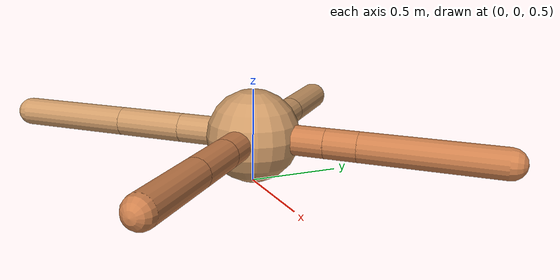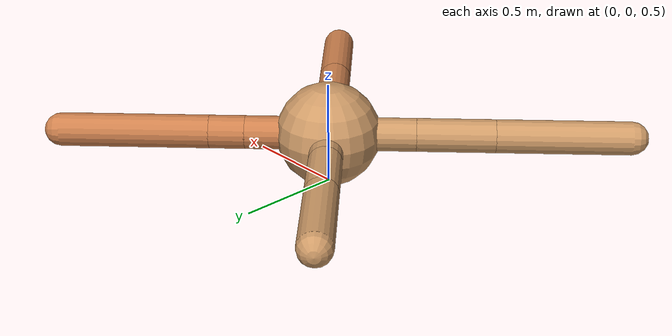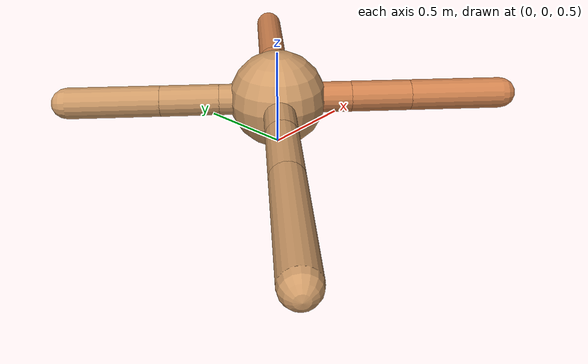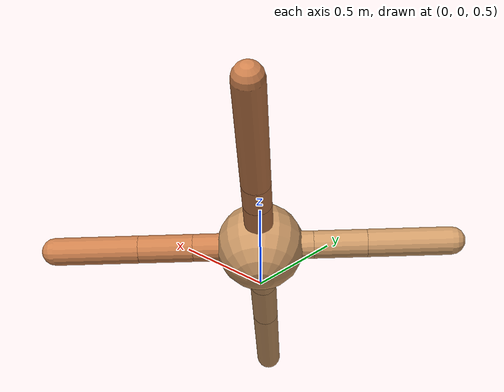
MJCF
<mujoco model="ant">
  <compiler angle="degree" coordinate="local" inertiafromgeom="true" />
  <option integrator="RK4" timestep="0.01" />
  <custom>
    <numeric data="0.0 0.0 0.55 1.0 0.0 0.0 0.0 0.0 1.0 0.0 -1.0 0.0 -1.0 0.0 1.0" name="init_qpos" />
  </custom>
  <default>
    <joint armature="1" damping="1" limited="true" />
    <geom conaffinity="0" condim="3" density="5.0" friction="1.5 0.1 0.1" margin="0.01" rgba="0.8 0.6 0.4 1" />
  </default>
  <worldbody>
    <body name="torso" pos="0 0 0.75">
      <geom name="torso_geom" pos="0 0 0" size="0.25" type="sphere" />

      <body name="front_left_leg" pos="0 0 0">
        <geom fromto="0.0 0.0 0.0 0.2819656903105057 0.2819656903105057 0.0" name="aux_1_geom" size="0.08" type="capsule" rgba=".8 .5 .3 1" />
        <body name="aux_1" pos="0.2819656903105057 0.2819656903105057 0.0">
          <joint axis="0 0 1" name="hip_1" pos="0.0 0.0 0.0" range="-40 40" type="hinge" />
          <geom fromto="0.0 0.0 0.0 0.12118936775467362 0.12118936775467362 0.0" name="left_leg_geom" size="0.08" type="capsule" rgba=".8 .5 .3 1" />
          <body pos="0.12118936775467362 0.12118936775467362 0.0" name="front_left_foot">
            <joint axis="-1 1 0" name="ankle_1" pos="0.0 0.0 0.0" range="30 100" type="hinge" />
            <geom fromto="0.0 0.0 0.0 0.5055307125931942 0.5055307125931942 0.0" name="left_ankle_geom" size="0.08" type="capsule" rgba=".8 .5 .3 1" />
          </body>
        </body>
      </body>
      <body name="front_right_leg" pos="0 0 0">
        <geom fromto="0.0 0.0 0.0 -0.21278644497753849 0.21278644497753849 0.0" name="aux_2_geom" size="0.08" type="capsule" />
        <body name="aux_2" pos="-0.21278644497753849 0.21278644497753849 0.0">
          <joint axis="0 0 1" name="hip_2" pos="0.0 0.0 0.0" range="-40 40" type="hinge" />
          <geom fromto="0.0 0.0 0.0 -0.2126218637306213 0.2126218637306213 0.0" name="right_leg_geom" size="0.08" type="capsule" />
          <body pos="-0.2126218637306213 0.2126218637306213 0.0" name="front_right_foot">
            <joint axis="1 1 0" name="ankle_2" pos="0.0 0.0 0.0" range="-100 -30" type="hinge" />
            <geom fromto="0.0 0.0 0.0 -0.3329977178493344 0.3329977178493344 0.0" name="right_ankle_geom" size="0.08" type="capsule" />
          </body>
        </body>
      </body>
      <body name="left_back_leg" pos="0 0 0">
        <geom fromto="0.0 0.0 0.0 -0.2962351420107247 -0.2962351420107247 0.0" name="aux_3_geom" size="0.08" type="capsule" />
        <body name="aux_3" pos="-0.2962351420107247 -0.2962351420107247 0.0">
          <joint axis="0 0 1" name="hip_3" pos="0.0 0.0 0.0" range="-40 40" type="hinge" />
          <geom fromto="0.0 0.0 0.0 -0.26618856400058066 -0.26618856400058066 0.0" name="back_leg_geom" size="0.08" type="capsule" />
          <body pos="-0.26618856400058066 -0.26618856400058066 0.0" name="left_back_foot">
            <joint axis="-1 1 0" name="ankle_3" pos="0.0 0.0 0.0" range="-100 -30" type="hinge" />
            <geom fromto="0.0 0.0 0.0 -0.45573243701659366 -0.45573243701659366 0.0" name="third_ankle_geom" size="0.08" type="capsule" />
          </body>
        </body>
      </body>
      <body name="right_back_leg" pos="0 0 0">
        <geom fromto="0.0 0.0 0.0 0.26932324615457687 -0.26932324615457687 0.0" name="aux_4_geom" size="0.08" type="capsule" rgba=".8 .5 .3 1" />
        <body name="aux_4" pos="0.26932324615457687 -0.26932324615457687 0.0">
          <joint axis="0 0 1" name="hip_4" pos="0.0 0.0 0.0" range="-40 40" type="hinge" />
          <geom fromto="0.0 0.0 0.0 0.22024675291002246 -0.22024675291002246 0.0" name="rightback_leg_geom" size="0.08" type="capsule" rgba=".8 .5 .3 1" />
          <body pos="0.22024675291002246 -0.22024675291002246 0.0" name="right_back_foot">
            <joint axis="1 1 0" name="ankle_4" pos="0.0 0.0 0.0" range="30 100" type="hinge" />
            <geom fromto="0.0 0.0 0.0 0.34187132615034416 -0.34187132615034416 0.0" name="fourth_ankle_geom" size="0.08" type="capsule" rgba=".8 .5 .3 1" />
          </body>
        </body>
      </body>
    </body>
  </worldbody>
  <actuator>
    <motor ctrllimited="true" ctrlrange="-1.0 1.0" joint="hip_4" gear="150" />
    <motor ctrllimited="true" ctrlrange="-1.0 1.0" joint="ankle_4" gear="150" />
    <motor ctrllimited="true" ctrlrange="-1.0 1.0" joint="hip_1" gear="150" />
    <motor ctrllimited="true" ctrlrange="-1.0 1.0" joint="ankle_1" gear="150" />
    <motor ctrllimited="true" ctrlrange="-1.0 1.0" joint="hip_2" gear="150" />
    <motor ctrllimited="true" ctrlrange="-1.0 1.0" joint="ankle_2" gear="150" />
    <motor ctrllimited="true" ctrlrange="-1.0 1.0" joint="hip_3" gear="150" />
    <motor ctrllimited="true" ctrlrange="-1.0 1.0" joint="ankle_3" gear="150" />
  </actuator>
</mujoco>
